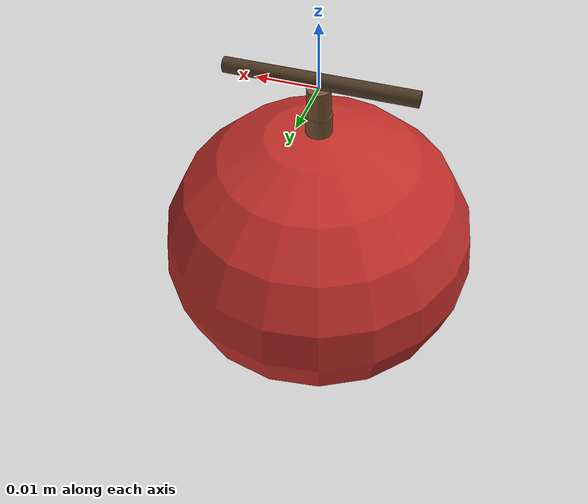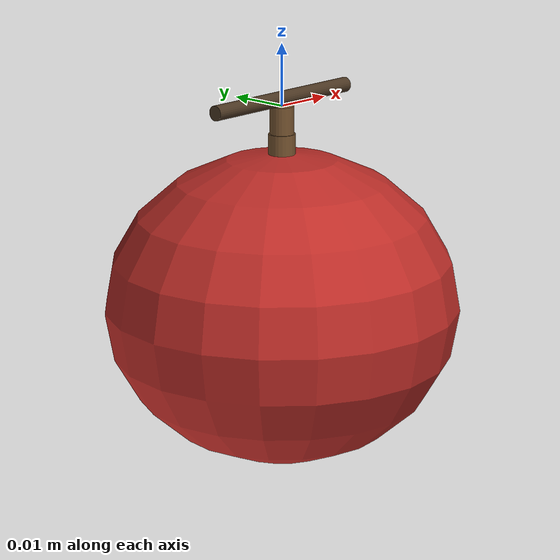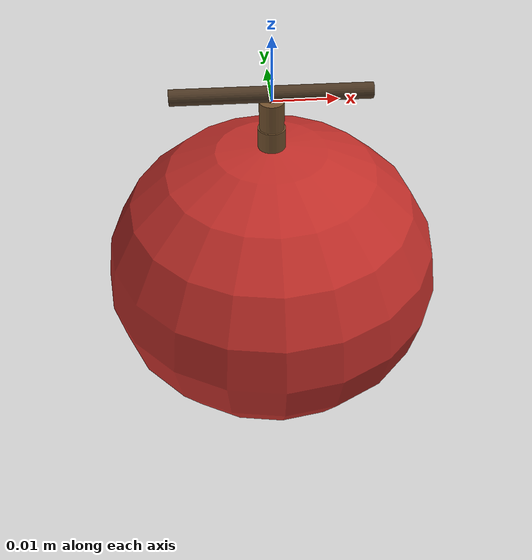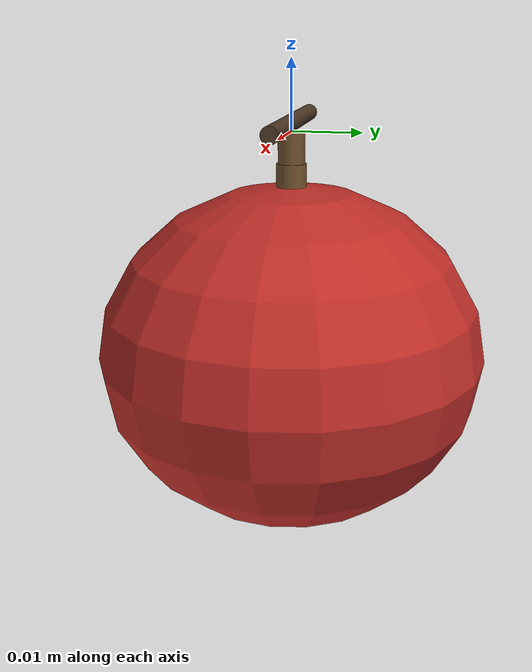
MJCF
<mujoco model="aipick_stalk_scene">

  <compiler angle="radian" autolimits="true"/>

  <option timestep="0.0041666667" gravity="0 0 -9.81" integrator="Euler">
    <flag contact="disable"/>
  </option>

  <default>
    <geom rgba="0.45 0.32 0.18 1"/>
    <joint type="ball" stiffness="0.030" damping="0.0015"/>
  </default>

  <worldbody>
    <light pos="0 0 0.3" dir="0 0 -1"/>

    <geom name="spur" type="cylinder" fromto="-0.015 0 0.0012  0.015 0 0.0012"
          size="0.0012" rgba="0.30 0.22 0.14 1"/>

    <body name="seg4" pos="0 0 0">
      <site name="s_az" pos="0 0 0" size="0.0006" rgba="1 0.4 0 1"/>
      <joint name="j_az" stiffness="0" damping="0.0015"/>
      <inertial pos="0 0 -0.00222525" mass="0.020" diaginertia="2e-5 2e-5 1e-5"/>
      <geom name="g4" type="cylinder" fromto="0 0 0  0 0 -0.0044505" size="0.00192"/>

      <body name="seg3" pos="0 0 -0.0044505">
        <joint name="j_in4"/>
        <inertial pos="0 0 -0.00222525" mass="0.020" diaginertia="2e-5 2e-5 1e-5"/>
        <geom name="g3" type="cylinder" fromto="0 0 0  0 0 -0.0044505" size="0.00216"/>

        <body name="seg2" pos="0 0 -0.0044505">
          <joint name="j_in3"/>
          <inertial pos="0 0 -0.00222525" mass="0.020" diaginertia="2e-5 2e-5 1e-5"/>
          <geom name="g2" type="cylinder" fromto="0 0 0  0 0 -0.0044505" size="0.00240"/>

          <body name="seg1" pos="0 0 -0.0044505">
            <joint name="j_in2"/>
            <inertial pos="0 0 -0.00222525" mass="0.020" diaginertia="2e-5 2e-5 1e-5"/>
            <geom name="g1" type="cylinder" fromto="0 0 0  0 0 -0.0044505" size="0.00264"/>

            <body name="seg0" pos="0 0 -0.0044505">
              <joint name="j_in1"/>
              <inertial pos="0 0 -0.00222525" mass="0.020" diaginertia="2e-5 2e-5 1e-5"/>
              <geom name="g0" type="cylinder" fromto="0 0 0  0 0 -0.0044505" size="0.00288"/>

              <body name="fruit" pos="0 0 -0.01495">
                <site name="s_stem" pos="0 0 0.01495" size="0.0008" rgba="1 0 0 1"/>
                <inertial pos="0 0 0" mass="0.0735807337962370"
                          diaginertia="2.15835e-5 2.15835e-5 2.43276e-5"/>
                <geom name="apple" type="ellipsoid" size="0.02875 0.02875 0.02530"
                      rgba="0.75 0.18 0.16 1"/>
              </body>
            </body>
          </body>
        </body>
      </body>
    </body>
  </worldbody>

  <sensor>
    <!-- Forces. Two junctions, two different readings - see the note above. -->
    <force name="f_stem" site="s_stem"/>
    <force name="f_az"   site="s_az"/>

    <framezaxis name="ax4" objtype="body" objname="seg4"/>
    <framezaxis name="ax3" objtype="body" objname="seg3"/>
    <framezaxis name="ax2" objtype="body" objname="seg2"/>
    <framezaxis name="ax1" objtype="body" objname="seg1"/>
    <framezaxis name="ax0" objtype="body" objname="seg0"/>

    <!-- Fruit orientation, for the twist. The abscission twist is measured on the
         FRUIT, at the far end of the chain from where the bend is measured. -->
    <framequat name="q_fruit" objtype="body" objname="fruit"/>
  </sensor>
</mujoco>
